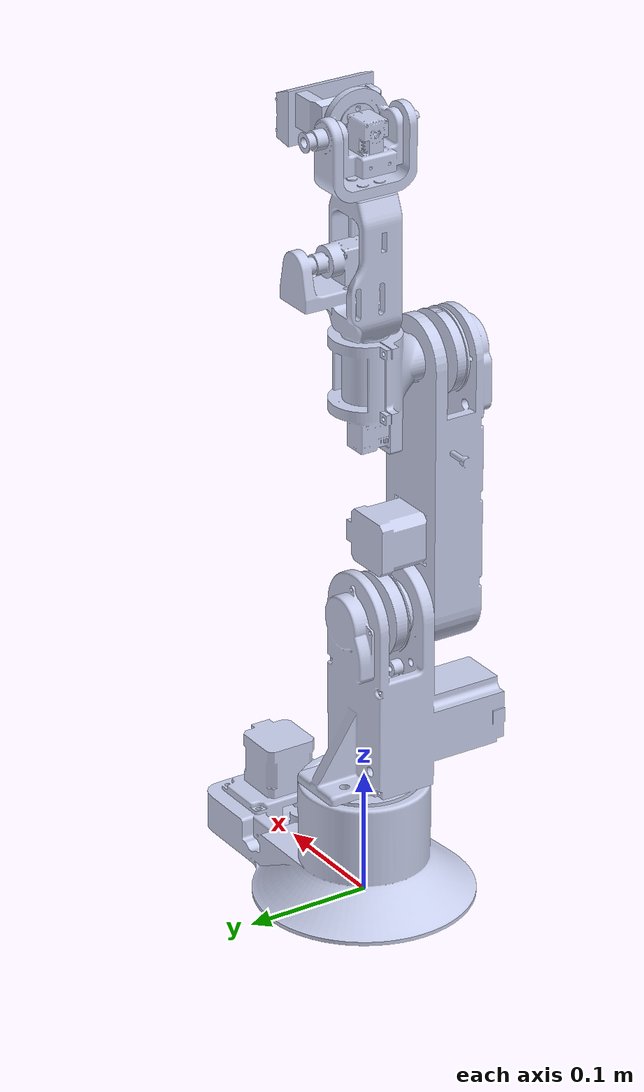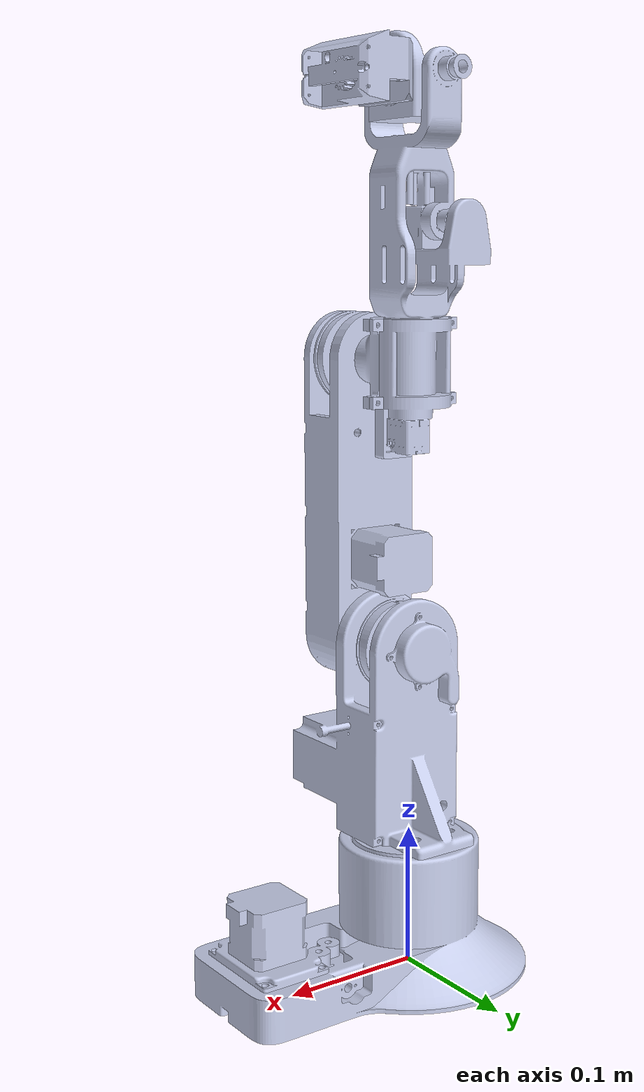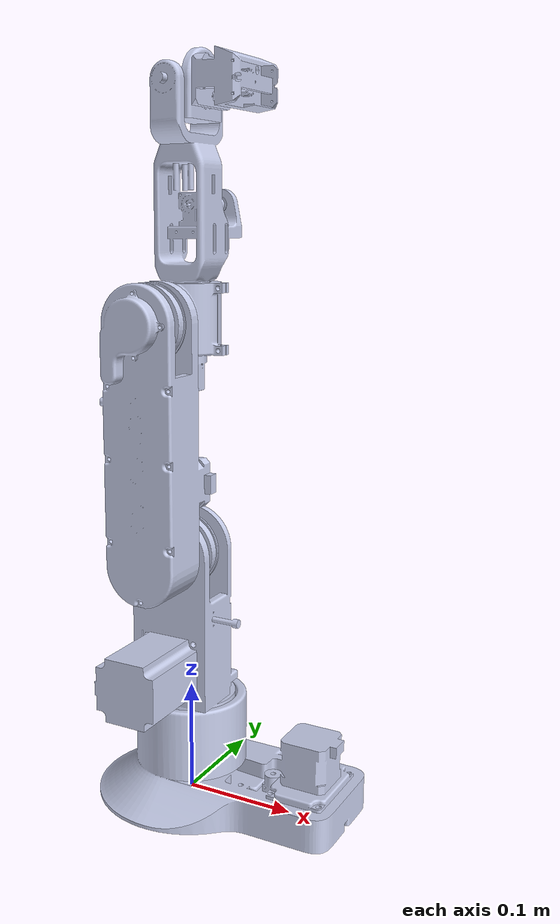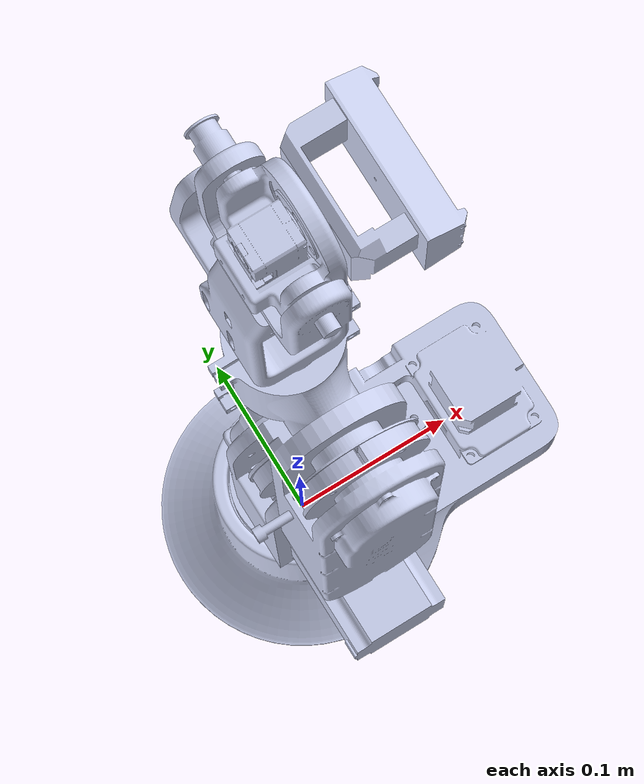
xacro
<?xml version="1.0"?>
<robot xmlns:xacro="http://www.ros.org/wiki/xacro">
  <xacro:property name="joint_damping" value="1.0"/>

  <link name="world"/>

  <joint name="base_joint" type="fixed">
    <parent link="world"/>
    <child link="base_link"/>
    <origin rpy="0 0 0" xyz="0.0 0.0 0.0"/>
  </joint>

  <link
    name="base_link">
    <inertial>
      <origin
        xyz="0.032405 -0.00051995 0.03193"
        rpy="0 0 0" />
      <mass
        value="1.1011" />
      <inertia ixx="0.0001" ixy="0.000"  ixz="0.000"
         iyy="0.0001" iyz="0.000"
         izz="0.0001"/>
    </inertial>
    <visual>
      <origin
        xyz="0 0 0"
        rpy="0 0 0" />
      <geometry>
        <mesh
          filename="package://nick_bot/meshes/base_link.STL" />
      </geometry>
      <material
        name="">
        <color
          rgba="0.79216 0.81961 0.93333 1" />
      </material>
    </visual>
    <collision>
      <origin
        xyz="0 0 0"
        rpy="0 0 0" />
      <geometry>
        <mesh
          filename="package://nick_bot/meshes/base_link.STL" />
      </geometry>
    </collision>
  </link>
  <link
    name="link_1">
    <inertial>
      <origin
        xyz="0.00014233 0.11339 0.028392"
        rpy="0 0 0" />
      <mass
        value="0.6335" />
      <inertia ixx="0.0001" ixy="0.000"  ixz="0.000"
         iyy="0.0001" iyz="0.000"
         izz="0.0001"/>
    </inertial>
    <visual>
      <origin
        xyz="0 0 0"
        rpy="0 0 0" />
      <geometry>
        <mesh
          filename="package://nick_bot/meshes/link_1.STL" />
      </geometry>
      <material
        name="">
        <color
          rgba="0.79216 0.81961 0.93333 1" />
      </material>
    </visual>
    <collision>
      <origin
        xyz="0 0 0"
        rpy="0 0 0" />
      <geometry>
        <mesh
          filename="package://nick_bot/meshes/link_1.STL" />
      </geometry>
    </collision>
  </link>
  <joint
    name="joint_1"
    type="revolute">
    <origin
      xyz="0 0 0.0305"
      rpy="1.5708 0 0" />
    <parent
      link="base_link" />
    <child
      link="link_1" />
    <axis
      xyz="0 -1 0" />
    <limit
      lower="-3.5"
      upper="3.5"
      effort="0"
      velocity="0" />
  </joint>
  <link
    name="link_2">
    <inertial>
      <origin
        xyz="0.00022044 0.091028 0.053199"
        rpy="0 0 0" />
      <mass
        value="0.52734" />
      <inertia ixx="0.0001" ixy="0.000"  ixz="0.000"
         iyy="0.0001" iyz="0.000"
         izz="0.0001"/>
    </inertial>
    <visual>
      <origin
        xyz="0 0 0"
        rpy="0 0 0" />
      <geometry>
        <mesh
          filename="package://nick_bot/meshes/link_2.STL" />
      </geometry>
      <material
        name="">
        <color
          rgba="0.79216 0.81961 0.93333 1" />
      </material>
    </visual>
    <collision>
      <origin
        xyz="0 0 0"
        rpy="0 0 0" />
      <geometry>
        <mesh
          filename="package://nick_bot/meshes/link_2.STL" />
      </geometry>
    </collision>
  </link>
  <joint
    name="joint_2"
    type="revolute">
    <origin
      xyz="0 0.20125 0.0011675"
      rpy="0 0 0" />
    <parent
      link="link_1" />
    <child
      link="link_2" />
    <axis
      xyz="-0.0042062 0 -0.99999" />
    <limit
      lower="-1.6"
      upper="1.6"
      effort="0"
      velocity="0" />
  </joint>
  <link
    name="link_3">
    <inertial>
      <origin
        xyz="5.0355E-05 -0.010892 0.010933"
        rpy="0 0 0" />
      <mass
        value="0.11306" />
      <inertia ixx="0.0001" ixy="0.000"  ixz="0.000"
         iyy="0.0001" iyz="0.000"
         izz="0.0001"/>
    </inertial>
    <visual>
      <origin
        xyz="0 0 0"
        rpy="0 0 0" />
      <geometry>
        <mesh
          filename="package://nick_bot/meshes/link_3.STL" />
      </geometry>
      <material
        name="">
        <color
          rgba="0.79216 0.81961 0.93333 1" />
      </material>
    </visual>
    <collision>
      <origin
        xyz="0 0 0"
        rpy="0 0 0" />
      <geometry>
        <mesh
          filename="package://nick_bot/meshes/link_3.STL" />
      </geometry>
    </collision>
  </link>
  <joint
    name="joint_3"
    type="revolute">
    <origin
      xyz="0 0.2 0"
      rpy="0 0 0" />
    <parent
      link="link_2" />
    <child
      link="link_3" />
    <axis
      xyz="0.0042062 0 0.99999" />
    <limit
      lower="-2"
      upper="2"
      effort="0"
      velocity="0" />
  </joint>
  <link
    name="link_4">
    <inertial>
      <origin
        xyz="-3.1646E-05 0.081245 -0.0074944"
        rpy="0 0 0" />
      <mass
        value="0.21005" />
      <inertia ixx="0.0001" ixy="0.000"  ixz="0.000"
         iyy="0.0001" iyz="0.000"
         izz="0.0001"/>
    </inertial>
    <visual>
      <origin
        xyz="0 0 0"
        rpy="0 0 0" />
      <geometry>
        <mesh
          filename="package://nick_bot/meshes/link_4.STL" />
      </geometry>
      <material
        name="">
        <color
          rgba="0.79216 0.81961 0.93333 1" />
      </material>
    </visual>
    <collision>
      <origin
        xyz="0 0 0"
        rpy="0 0 0" />
      <geometry>
        <mesh
          filename="package://nick_bot/meshes/link_4.STL" />
      </geometry>
    </collision>
  </link>
  <joint
    name="joint_4"
    type="revolute">
    <origin
      xyz="0 0 -0.0011675"
      rpy="0 0 0" />
    <parent
      link="link_3" />
    <child
      link="link_4" />
    <axis
      xyz="0 1 0" />
    <limit
      lower="-4"
      upper="4"
      effort="0"
      velocity="0" />
  </joint>
  <link
    name="link_5">
    <inertial>
      <origin
        xyz="0.0027735 -0.011173 -1.3036E-05"
        rpy="0 0 0" />
      <mass
        value="0.049088" />
      <inertia ixx="0.0001" ixy="0.000"  ixz="0.000"
         iyy="0.0001" iyz="0.000"
         izz="0.0001"/>
    </inertial>
    <visual>
      <origin
        xyz="0 0 0"
        rpy="0 0 0" />
      <geometry>
        <mesh
          filename="package://nick_bot/meshes/link_5.STL" />
      </geometry>
      <material
        name="">
        <color
          rgba="0.79216 0.81961 0.93333 1" />
      </material>
    </visual>
    <collision>
      <origin
        xyz="0 0 0"
        rpy="0 0 0" />
      <geometry>
        <mesh
          filename="package://nick_bot/meshes/link_5.STL" />
      </geometry>
    </collision>
  </link>
  <joint
    name="joint_5"
    type="revolute">
    <origin
      xyz="0 0.18825 0"
      rpy="-7.0292E-05 0 -0.016712" />
    <parent
      link="link_4" />
    <child
      link="link_5" />
    <axis
      xyz="-0.0042056 0 -0.99999" />
    <limit
      lower="-1.5"
      upper="1.5"
      effort="0"
      velocity="0" />
  </joint>
  <link
    name="link_6">
    <inertial>
      <origin
        xyz="0.00056302 -0.0002805 0.029374"
        rpy="0 0 0" />
      <mass
        value="0.055212" />
      <inertia ixx="0.0001" ixy="0.000"  ixz="0.000"
         iyy="0.0001" iyz="0.000"
         izz="0.0001"/>
    </inertial>
    <visual>
      <origin
        xyz="0 0 0"
        rpy="0 0 0" />
      <geometry>
        <mesh
          filename="package://nick_bot/meshes/link_6.STL" />
      </geometry>
      <material
        name="">
        <color
          rgba="0.79216 0.81961 0.93333 1" />
      </material>
    </visual>
    <collision>
      <origin
        xyz="0 0 0"
        rpy="0 0 0" />
      <geometry>
        <mesh
          filename="package://nick_bot/meshes/link_6.STL" />
      </geometry>
    </collision>
  </link>
  <joint
    name="joint_6"
    type="revolute">
    <origin
      xyz="0.0099995 0.00016713 -4.2055E-05"
      rpy="3.1249 1.5666 3.1416" />
    <parent
      link="link_5" />
    <child
      link="link_6" />
    <axis
      xyz="0 0 -1" />
    <limit
      lower="-3.14159"
      upper="3.14159"
      effort="0"
      velocity="0" />
  </joint>

</robot>
